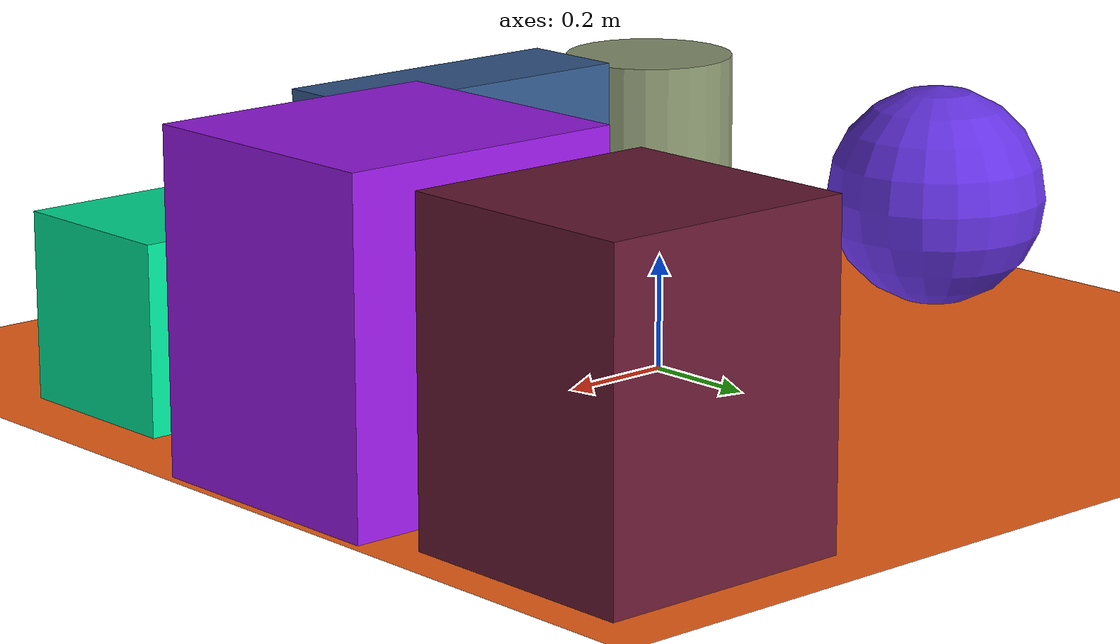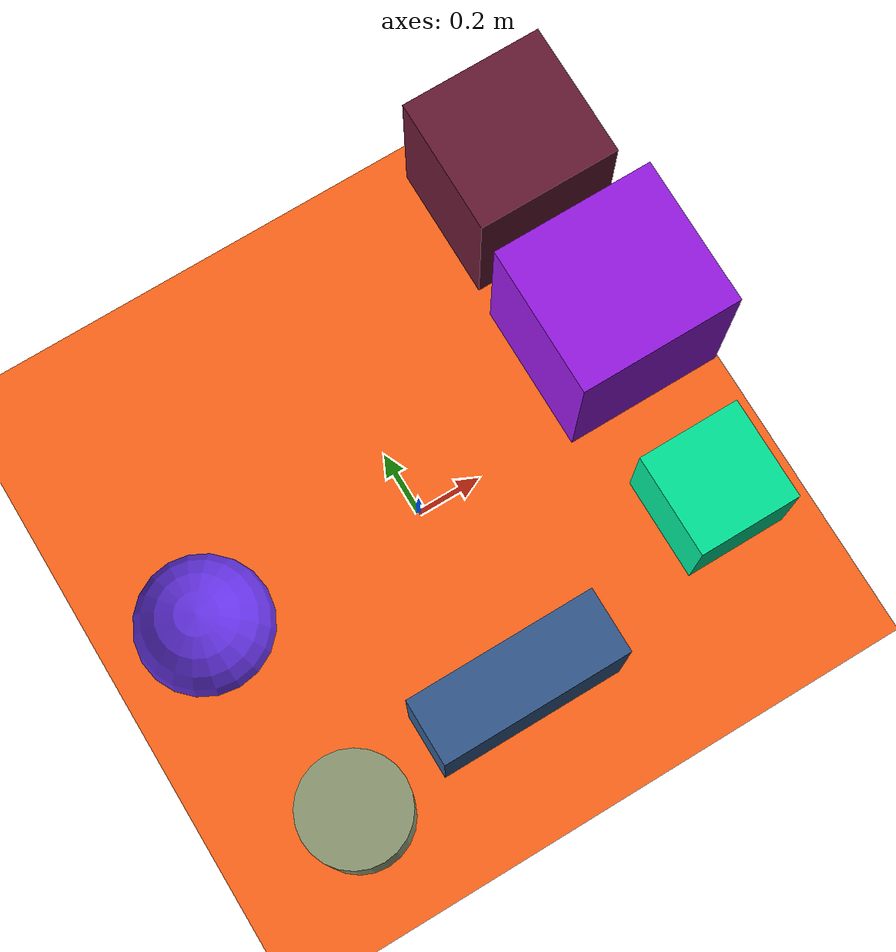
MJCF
<mujoco>
   <asset>
<texture type="skybox" builtin="gradient" rgb1="0.4 0.8 0.4" rgb2="0.7 0.4 0.5" width="256" height="256"/>
<texture name="checker_0" builtin="checker" type="2d" rgb1="0.1 0.0 0.5" rgb2="0.3 0.7 0.6" width="200" height="200"/>
<texture name="gradient_1" builtin="gradient" rgb1="0.7 0.6 0.9" rgb2="0.4 0.6 0.0" width="200" height="200"/>
<texture name="gradient_2" builtin="gradient" rgb1="0.7 0.0 0.9" rgb2="0.1 0.4 0.9" width="200" height="200"/>
<texture name="flat_3" builtin="flat" rgb1="0.0 0.9 0.6" rgb2="0.0 0.9 0.6"  width="200" height="200"/>
<texture name="flat_4" builtin="flat" rgb1="0.6 0.1 0.9" rgb2="0.6 0.1 0.9"  width="200" height="200"/>
<texture name="flat_5" builtin="flat" rgb1="0.4 0.1 0.2" rgb2="0.4 0.1 0.2"  width="200" height="200"/><material name="checker_0_mat" reflectance="0" texrepeat="3 3" texture="checker_0" texuniform="false" />
<material name="gradient_1_mat" reflectance="0" texture="gradient_1" texuniform="true"/>
<material name="gradient_2_mat" reflectance="0" texture="gradient_2" texuniform="true"/>
<material name="flat_3_mat" reflectance="0" texture="flat_3" texuniform="true"/>
<material name="flat_4_mat" reflectance="0" texture="flat_4" texuniform="true"/>
<material name="flat_5_mat" reflectance="0" texture="flat_5" texuniform="true"/>
   </asset>

   <worldbody>
      <light diffuse=".9 .9 .9" pos="0 0 3" dir="0 0 -1"/>
     <geom type="plane" size="1 1 0.1" rgba="1.0 0.4 0.1 1"/>
<geom type="box" pos="-0.04 -0.59 0.21" size="0.29 0.1 0.21" material="checker_0_mat" />
<geom type="cylinder" pos="-0.59 -0.66 0.19" size="0.16 0.19 0.19" material="gradient_1_mat" />
<geom type="sphere" pos="-0.69 -0.0 0.2" size="0.2 0.2 0.2" material="gradient_2_mat" />
<geom type="box" pos="0.73 -0.4 0.16" size="0.16 0.16 0.16" material="flat_3_mat" />
<geom type="box" pos="0.74 0.18 0.28" size="0.25 0.23 0.28" material="flat_4_mat" />
<geom type="box" pos="0.72 0.7 0.27" size="0.22 0.21 0.27" material="flat_5_mat" /><camera euler="60 0 180" fovy="60" name="camera_a" pos="0 -1.5 1"></camera>   </worldbody>
</mujoco>
